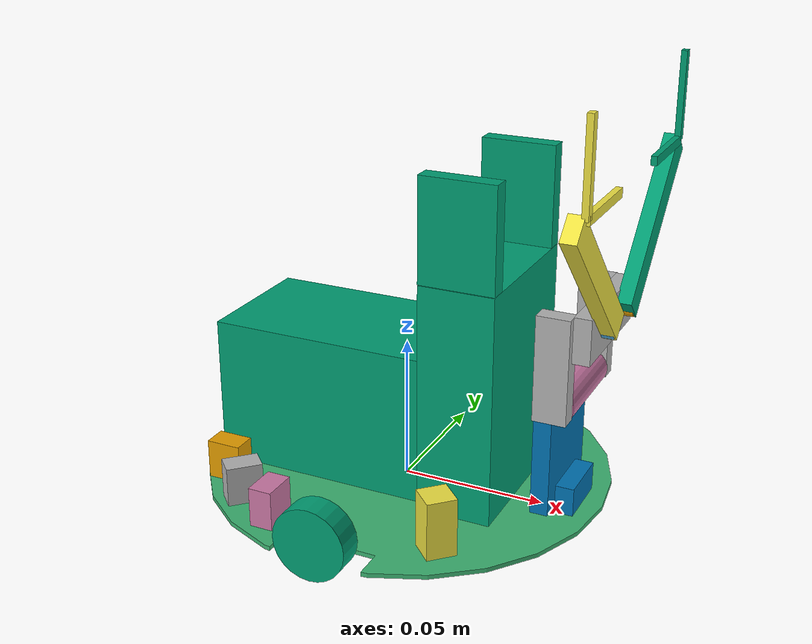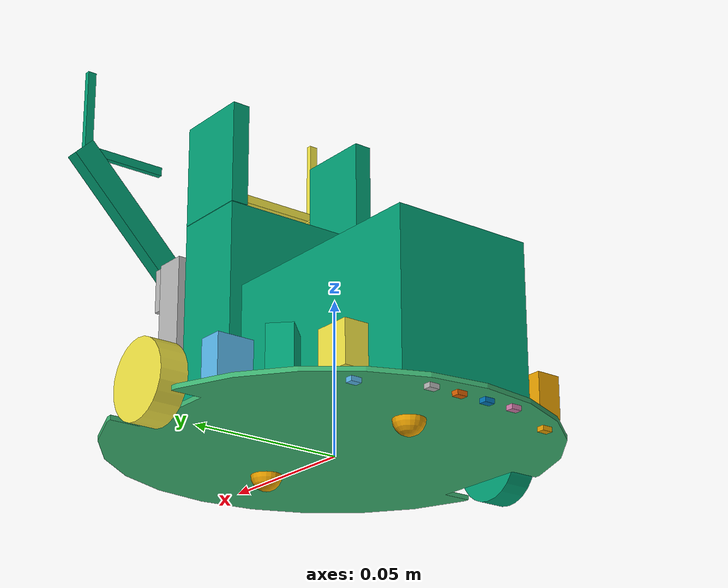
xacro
<?xml version="1.0"?>
<robot xmlns:xacro="http://www.ros.org/wiki/xacro" name="pibot">
  <xacro:include filename="$(find pibot_description)/models/iti0201_robot_cone/urdf/pibot_description.urdf.xacro" />

  <xacro:base_with_casters/>
  <xacro:brainbox_with_battery/>
  <xacro:front_ir_sensors/>
  <xacro:rear_ir_sensors/>
  <xacro:first_two_line_sensors/>
  <xacro:second_two_line_sensors/>
  <xacro:third_two_line_sensors/>
  <!--xacro:raspberry_camera/-->
  <xacro:wheels/>
  <xacro:grabber_arm/>
</robot>

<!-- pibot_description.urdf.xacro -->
<robot xmlns:xacro="http://www.ros.org/wiki/xacro" name="pibot">

  <xacro:macro name="base_with_casters">
    <xacro:property name="base_radius" value="0.07" />
    <xacro:property name="base_height" value="0.0015" />
    <xacro:property name="base_mass" value="5" /> <!--real: 0.48kg-->
    <xacro:property name="caster_wheel_radius" value="0.005" />

    <link name="base_with_casters">

      <inertial>
        <mass value="${base_mass}"/>
        <inertia ixx="${1/12 * base_mass * ((3 * base_radius * base_radius) + (base_height * base_height))}" ixy="0.0" ixz="0.0"
          iyy="${1/12 * base_mass * ((3 * base_radius * base_radius) + (base_height * base_height))}" iyz="0.0"
          izz="${1/2 * base_mass * (base_radius * base_radius)}"/>
      </inertial>

      <visual name="base_visual">
        <origin xyz="0.0745 -0.0725 0.0025" rpy="0 0 1.57"/>
        <geometry>
          <mesh filename="package://iti0201_robot/meshes/base_green.dae"/>
          <!--cylinder length="0.0015" radius="0.07"/-->
        </geometry>
      </visual>

      <collision name="base_collision">
        <origin xyz="0.0745 -0.0725 0.0025" rpy="0 0 1.57"/>
        <geometry>
          <mesh filename="package://iti0201_robot/meshes/base_green.dae"/>
          <!--cylinder length="0.0015" radius="0.07"/-->
        </geometry>
      </collision>

      <visual name='front_caster_visual'>
        <origin xyz="0.035 0 0.0025" rpy="0 0 0"/>
        <geometry>
          <sphere radius="${caster_wheel_radius}"/>
        </geometry>
      </visual>

      <collision name='front_caster_collision'>
        <origin xyz="0.035 0 0.0025" rpy="0 0 0"/>
        <geometry>
          <sphere radius="${caster_wheel_radius}"/>
        </geometry>
      </collision>

      <visual name='rear_caster_visual'>
        <origin xyz="-0.035 0 0.0025" rpy="0 0 0"/>
        <geometry>
          <sphere radius="${caster_wheel_radius}"/>
        </geometry>
      </visual>

      <collision name='rear_caster_collision'>
        <origin xyz="-0.035 0 0.0025" rpy="0 0 0"/>
        <geometry>
          <sphere radius="${caster_wheel_radius}"/>
        </geometry>
      </collision>
    </link>

    <gazebo reference="base_with_casters">
      <surface>
        <friction>
          <ode>
            <mu>0</mu>
            <mu2>0</mu2>
            <slip1>1.0</slip1>
            <slip2>1.0</slip2>
          </ode>
        </friction>
      </surface>
    </gazebo>

    <link name="wheel_joint">
      <inertial>
        <mass value="0.001"/>
        <inertia ixx="${1/12 * 0.001 * ((0.001 * 0.001) + (0.001 * 0.001))}" ixy="0.0" ixz="0.0"
          iyy="${1/12 * 0.001 * ((0.001 * 0.001) + (0.001 * 0.001))}" iyz="0.0"
          izz="${1/12 * 0.001 * ((0.001 * 0.001) + (0.001 * 0.001))}"/>
      </inertial>
      <visual name='joint_visual'>
        <geometry>
          <box size="0.001 0.001 0.001"/>
        </geometry>
      </visual>
    </link>

    <joint type="fixed" name="Wheel_joint_to_base">
      <origin xyz="0 0 0.0095" rpy="0 0 0" />
      <child link="wheel_joint"/>
      <parent link="base_with_casters" />
    </joint>
  </xacro:macro>

<!-- ONLY VISUAL -->
  <xacro:macro name="brainbox_with_battery">
    <link name="brainbox_with_battery">

      <inertial>
        <mass value="0.001"/>
        <inertia ixx="${1/12 * 0.001 * ((0.05 * 0.05) + (0.09 * 0.09))}" ixy="0.0" ixz="0.0"
          iyy="${1/12 * 0.001 * ((0.047 * 0.047) + (0.09 * 0.09))}" iyz="0.0"
          izz="${1/12 * 0.001 * ((0.047 * 0.047) + (0.05 * 0.05))}"/>
      </inertial>

      <visual name="brainbox_visual">
        <origin xyz="-0.022 0 0.0294" rpy="0 0 0" />
        <geometry>
          <box size="0.077 0.0468 0.0512"/>
        </geometry>
      </visual>

      <visual name="camera_stand_visual">
        <origin xyz="0.0294 0 0.043" rpy="0 0 0" />
        <geometry>
          <box size="0.0255 0.0553 0.07896"/>
        </geometry>
      </visual>

      <visual name="camera_stand_right_wall_visual">
        <origin xyz="0.0294 -0.02467 0.1" rpy="0 0 0" />
        <geometry>
          <box size="0.0255 0.006 0.0346"/>
        </geometry>
      </visual>

      <visual name="camera_stand_left_wall_visual">
        <origin xyz="0.0294 0.02467 0.1" rpy="0 0 0" />
        <geometry>
          <box size="0.0255 0.006 0.0346"/>
        </geometry>
      </visual>
    </link>

    <joint type="fixed" name="brainbox_to_base">
      <origin xyz="0 0 0" rpy="0 0 0"/>
      <child link="brainbox_with_battery"/>
      <parent link="base_with_casters"/>
    </joint>
  </xacro:macro>

<!-- SHARP SENSORS -->
  <xacro:macro name="front_ir_sensors">
    <link name="front_right_45deg_ir">
      <inertial>
        <mass value="0.001"/>
        <inertia ixx="${1/12 * 0.001 * ((0.02 * 0.02) + (0.01 * 0.01))}" ixy="0.0" ixz="0.0"
          iyy="${1/12 * 0.001 * ((0.01 * 0.01) + (0.01 * 0.01))}" iyz="0.0"
          izz="${1/12 * 0.001 * ((0.01 * 0.01) + (0.02 * 0.02))}"/>
      </inertial>
      <collision name="front_right_45deg_ir_collision">
        <geometry>
          <box size="0.01 0.01 0.02"/>
        </geometry>
      </collision>
      <visual name="front_right_45deg_ir_visual">
        <geometry>
          <box size="0.01 0.01 0.02"/>
        </geometry>
      </visual>
    </link>

    <joint type="fixed" name="front_right_45deg_ir_to_base">
      <origin xyz="0.0326 -0.0471 0.0138" rpy="0 0 -0.78535"/>
      <child link="front_right_45deg_ir"/>
      <parent link="base_with_casters"/>
    </joint>

    <gazebo reference="front_right_45deg_ir">
      <sensor name="ir" type="ray">
        <ray>
          <scan>
            <horizontal>
              <samples>100</samples>
              <resolution>1</resolution>
              <min_angle>-0.22</min_angle>
              <max_angle>0.22</max_angle>
            </horizontal>
          </scan>
          <range>
            <min>0.15</min>
            <max>1.00</max>
            <resolution>0.01</resolution>
          </range>
        </ray>
        <always_on>1</always_on>
        <update_rate>15</update_rate>
        <visualize>false</visualize>
        <plugin name="ir_plugin" filename="libir_plugin.so">
          <topic>ir/front_right</topic>
        </plugin>
      </sensor>
    </gazebo>

    <link name="front_middle_ir">
      <inertial>
        <mass value="0.001"/>
        <inertia ixx="${1/12 * 0.001 * ((0.01 * 0.01) + (0.01 * 0.01))}" ixy="0.0" ixz="0.0"
          iyy="${1/12 * 0.001 * ((0.02 * 0.02) + (0.01 * 0.01))}" iyz="0.0"
          izz="${1/12 * 0.001 * ((0.02 * 0.02) + (0.01 * 0.01))}"/>
      </inertial>
      <collision name="front_middle_ir_collision">
        <geometry>
          <box size="0.01 0.02 0.01"/>
        </geometry>
      </collision>
      <visual name="front_middle_ir_visual">
        <geometry>
          <box size="0.01 0.02 0.01"/>
        </geometry>
      </visual>
    </link>

    <joint type="fixed" name="front_middle_ir_to_base">
      <origin xyz="0.059312 0 0.0088" rpy="0 0 0"/>
      <child link="front_middle_ir"/>
      <parent link="base_with_casters"/>
    </joint>

    <gazebo reference="front_middle_ir">
      <sensor name="ir" type="ray">
          <ray>
            <scan>
              <horizontal>
                <samples>100</samples>
                <resolution>1</resolution>
                <min_angle>-0.22</min_angle>
                <max_angle>0.22</max_angle>
              </horizontal>
            </scan>
            <range>
              <min>0.15</min>
              <max>1.00</max>
              <resolution>0.01</resolution>
            </range>
          </ray>
          <always_on>1</always_on>
          <update_rate>15</update_rate>
          <visualize>false</visualize>
          <plugin name="ir_plugin" filename="libir_plugin.so">
            <topic>ir/front_middle</topic>
          </plugin>
        </sensor>
    </gazebo>

    <link name="front_left_45deg_ir">
      <inertial>
        <mass value="0.001"/>
        <inertia ixx="${1/12 * 0.001 * ((0.02 * 0.02) + (0.01 * 0.01))}" ixy="0.0" ixz="0.0"
          iyy="${1/12 * 0.001 * ((0.01 * 0.01) + (0.01 * 0.01))}" iyz="0.0"
          izz="${1/12 * 0.001 * ((0.01 * 0.01) + (0.02 * 0.02))}"/>
      </inertial>
      <collision name="front_left_45deg_ir_collisionl">
        <geometry>
          <box size="0.01 0.01 0.02"/>
        </geometry>
      </collision>
      <visual name="front_left_45deg_ir_visual">
        <geometry>
          <box size="0.01 0.01 0.02"/>
        </geometry>
      </visual>
    </link>

    <joint type="fixed" name="front_left_45deg_ir_to_base">
      <origin xyz="0.0326151 0.0470558 0.0138" rpy="0 0 0.78535"/>
      <child link="front_left_45deg_ir"/>
      <parent link="base_with_casters"/>
    </joint>

    <gazebo reference="front_left_45deg_ir">
      <sensor name="ir" type="ray">
          <ray>
            <scan>
              <horizontal>
                <samples>100</samples>
                <resolution>1</resolution>
                <min_angle>-0.22</min_angle>
                <max_angle>0.22</max_angle>
              </horizontal>
            </scan>
            <range>
              <min>0.15</min>
              <max>1.00</max>
              <resolution>0.01</resolution>
            </range>
          </ray>
          <always_on>1</always_on>
          <update_rate>15</update_rate>
          <visualize>false</visualize>
          <plugin name="ir_plugin" filename="libir_plugin.so">
            <topic>ir/front_left</topic>
          </plugin>
        </sensor>
    </gazebo>
  </xacro:macro>

<!-- REAR IR SENSORS -->
  <xacro:macro name="rear_ir_sensors">
    <link name="rear_right_90deg_ir">
      <inertial>
        <mass value="0.001"/>
        <inertia ixx="${1/12 * 0.001 * ((0.0135 * 0.0135) + (0.012 * 0.012))}" ixy="0.0" ixz="0.0"
          iyy="${1/12 * 0.001 * ((0.008 * 0.008) + (0.012 * 0.012))}" iyz="0.0"
          izz="${1/12 * 0.001 * ((0.008 * 0.008) + (0.0135 * 0.0135))}"/>
      </inertial>
      <collision name="collision">
        <geometry>
          <box size="0.012 0.008 0.0135"/>
        </geometry>
      </collision>
      <visual name="visual">
        <geometry>
          <box size="0.012 0.008 0.0135"/>
        </geometry>
      </visual>
    </link>

    <joint type="fixed" name="rear_right_90deg_ir_to_base">
      <origin xyz="-0.02256 -0.0547 0.01134" rpy="0 0 -1.5707" />
      <child link="rear_right_90deg_ir"/>
      <parent link="base_with_casters"/>
    </joint>

    <gazebo reference="rear_right_90deg_ir">
      <sensor name="ir" type="ray">
        <ray>
          <scan>
            <horizontal>
              <samples>100</samples>
              <resolution>1</resolution>
              <min_angle>-0.1</min_angle>
              <max_angle>0.1</max_angle>
            </horizontal>
          </scan>
          <range>
            <min>0.02</min>
            <max>0.16</max>
            <resolution>0.01</resolution>
          </range>
        </ray>
        <always_on>1</always_on>
        <update_rate>15</update_rate>
        <visualize>false</visualize>
        <plugin name="ir_plugin" filename="libir_plugin.so">
          <topic>ir/rear_right_90</topic>
        </plugin>
      </sensor>
    </gazebo>

    <link name="rear_right_45deg_ir">
      <inertial>
        <mass value="0.001"/>
        <inertia ixx="${1/12 * 0.001 * ((0.0135 * 0.0135) + (0.012 * 0.012))}" ixy="0.0" ixz="0.0"
          iyy="${1/12 * 0.001 * ((0.008 * 0.008) + (0.012 * 0.012))}" iyz="0.0"
          izz="${1/12 * 0.001 * ((0.008 * 0.008) + (0.0135 * 0.0135))}"/>
      </inertial>
      <collision name="collision">
        <geometry>
          <box size="0.012 0.008 0.0135"/>
        </geometry>
      </collision>
      <visual name="visual">
        <geometry>
          <box size="0.012 0.008 0.0135"/>
        </geometry>
      </visual>
    </link>

    <joint type="fixed" name="rear_right_45deg_ir_to_base">
      <origin xyz="-0.037845 -0.046812 0.011341" rpy="0 0 -2.35605" />
      <child link="rear_right_45deg_ir"/>
      <parent link="base_with_casters"/>
    </joint>

    <gazebo reference="rear_right_45deg_ir">
      <sensor name="ir" type="ray">
        <ray>
          <scan>
            <horizontal>
              <samples>100</samples>
              <resolution>1</resolution>
              <min_angle>-0.1</min_angle>
              <max_angle>0.1</max_angle>
            </horizontal>
          </scan>
          <range>
            <min>0.02</min>
            <max>0.16</max>
            <resolution>0.01</resolution>
          </range>
        </ray>
        <always_on>1</always_on>
        <update_rate>15</update_rate>
        <visualize>false</visualize>
        <plugin name="ir_plugin" filename="libir_plugin.so">
          <topic>ir/rear_right_45</topic>
        </plugin>
      </sensor>
    </gazebo>

    <link name="rear_right_straight_ir">
      <inertial>
        <mass value="0.001"/>
        <inertia ixx="${1/12 * 0.001 * ((0.0135 * 0.0135) + (0.012 * 0.012))}" ixy="0.0" ixz="0.0"
          iyy="${1/12 * 0.001 * ((0.008 * 0.008) + (0.012 * 0.012))}" iyz="0.0"
          izz="${1/12 * 0.001 * ((0.008 * 0.008) + (0.0135 * 0.0135))}"/>
      </inertial>
      <collision name="collision">
        <geometry>
          <box size="0.012 0.008 0.0135"/>
        </geometry>
      </collision>
      <visual name="visual">
        <geometry>
          <box size="0.012 0.008 0.0135"/>
        </geometry>
      </visual>
    </link>

    <joint type="fixed" name="rear_right_straight_ir_to_base">
      <origin xyz="-0.0501109 -0.035473 0.011341" rpy="0 0 -3.14" />
      <child link="rear_right_straight_ir"/>
      <parent link="base_with_casters"/>
    </joint>

    <gazebo reference="rear_right_straight_ir">
      <sensor name="ir" type="ray">
        <ray>
          <scan>
            <horizontal>
              <samples>100</samples>
              <resolution>1</resolution>
              <min_angle>-0.1</min_angle>
              <max_angle>0.1</max_angle>
            </horizontal>
          </scan>
          <range>
            <min>0.02</min>
            <max>0.16</max>
            <resolution>0.01</resolution>
          </range>
        </ray>
        <always_on>1</always_on>
        <update_rate>15</update_rate>
        <visualize>false</visualize>
        <plugin name="ir_plugin" filename="libir_plugin.so">
          <topic>ir/rear_right_0</topic>
        </plugin>
      </sensor>
    </gazebo>

    <link name="rear_left_90deg_ir">
      <inertial>
        <mass value="0.001"/>
        <inertia ixx="${1/12 * 0.001 * ((0.0135 * 0.0135) + (0.012 * 0.012))}" ixy="0.0" ixz="0.0"
          iyy="${1/12 * 0.001 * ((0.008 * 0.008) + (0.012 * 0.012))}" iyz="0.0"
          izz="${1/12 * 0.001 * ((0.008 * 0.008) + (0.0135 * 0.0135))}"/>
      </inertial>
      <collision name="collision">
        <geometry>
          <box size="0.012 0.008 0.0135"/>
        </geometry>
      </collision>
      <visual name="visual">
        <geometry>
          <box size="0.012 0.008 0.0135"/>
        </geometry>
      </visual>
    </link>

    <joint type="fixed" name="rear_left_90deg_ir_to_base">
      <origin xyz="-0.0225688 0.054749 0.011341" rpy="0 0 1.5707" />
      <child link="rear_left_90deg_ir"/>
      <parent link="base_with_casters"/>
    </joint>

    <gazebo reference="rear_left_90deg_ir">
      <sensor name="ir" type="ray">
        <ray>
          <scan>
            <horizontal>
              <samples>100</samples>
              <resolution>1</resolution>
              <min_angle>-0.1</min_angle>
              <max_angle>0.1</max_angle>
            </horizontal>
          </scan>
          <range>
            <min>0.02</min>
            <max>0.16</max>
            <resolution>0.01</resolution>
          </range>
        </ray>
        <always_on>1</always_on>
        <update_rate>15</update_rate>
        <visualize>false</visualize>
        <plugin name="ir_plugin" filename="libir_plugin.so">
          <topic>ir/rear_left_90</topic>
        </plugin>
      </sensor>
    </gazebo>

    <link name="rear_left_45deg_ir">
      <inertial>
        <mass value="0.001"/>
        <inertia ixx="${1/12 * 0.001 * ((0.0135 * 0.0135) + (0.012 * 0.012))}" ixy="0.0" ixz="0.0"
          iyy="${1/12 * 0.001 * ((0.008 * 0.008) + (0.012 * 0.012))}" iyz="0.0"
          izz="${1/12 * 0.001 * ((0.008 * 0.008) + (0.0135 * 0.0135))}"/>
      </inertial>
      <collision name="collision">
        <geometry>
          <box size="0.012 0.008 0.0135"/>
        </geometry>
      </collision>
      <visual name="visual">
        <geometry>
          <box size="0.012 0.008 0.0135"/>
        </geometry>
      </visual>
    </link>

    <joint type="fixed" name="rear_left_45deg_ir_to_base">
      <origin xyz="-0.037845 0.046812 0.011341" rpy="0 0 2.35605" />
      <child link="rear_left_45deg_ir"/>
      <parent link="base_with_casters"/>
    </joint>

    <gazebo reference="rear_left_45deg_ir">
      <sensor name="ir" type="ray">
        <ray>
          <scan>
            <horizontal>
              <samples>100</samples>
              <resolution>1</resolution>
              <min_angle>-0.1</min_angle>
              <max_angle>0.1</max_angle>
            </horizontal>
          </scan>
          <range>
            <min>0.02</min>
            <max>0.16</max>
            <resolution>0.01</resolution>
          </range>
        </ray>
        <always_on>1</always_on>
        <update_rate>15</update_rate>
        <visualize>false</visualize>
        <plugin name="ir_plugin" filename="libir_plugin.so">
          <topic>ir/rear_left_45</topic>
        </plugin>
      </sensor>
    </gazebo>

    <link name="rear_left_straight_ir">
      <inertial>
        <mass value="0.001"/>
        <inertia ixx="${1/12 * 0.001 * ((0.0135 * 0.0135) + (0.012 * 0.012))}" ixy="0.0" ixz="0.0"
          iyy="${1/12 * 0.001 * ((0.008 * 0.008) + (0.012 * 0.012))}" iyz="0.0"
          izz="${1/12 * 0.001 * ((0.008 * 0.008) + (0.0135 * 0.0135))}"/>
      </inertial>
      <collision name="collision">
        <geometry>
          <box size="0.012 0.008 0.0135"/>
        </geometry>
      </collision>
      <visual name="visual">
        <geometry>
          <box size="0.012 0.008 0.0135"/>
        </geometry>
      </visual>
    </link>

    <joint type="fixed" name="rear_left_straight_ir_to_base">
      <origin xyz="-0.0501109 0.035473 0.011341" rpy="0 0 3.14" />
      <child link="rear_left_straight_ir"/>
      <parent link="base_with_casters"/>
    </joint>

    <gazebo reference="rear_left_straight_ir">
      <sensor name="ir" type="ray">
        <pose>0 0 0 0 -0 1.571</pose>
        <ray>
          <scan>
            <horizontal>
              <samples>100</samples>
              <resolution>1</resolution>
              <min_angle>-0.1</min_angle>
              <max_angle>0.1</max_angle>
            </horizontal>
          </scan>
          <range>
            <min>0.02</min>
            <max>0.16</max>
            <resolution>0.01</resolution>
          </range>
        </ray>
        <always_on>1</always_on>
        <update_rate>15</update_rate>
        <visualize>false</visualize>
        <plugin name="ir_plugin" filename="libir_plugin.so">
          <topic>ir/rear_left_0</topic>
        </plugin>
      </sensor>
    </gazebo>
  </xacro:macro>

<!-- LINE SENSORS -->
  <xacro:macro name="first_two_line_sensors">
    <link name="right_side_first_line_sensor_from_middle">
      <inertial>
        <mass value="0.001"/>
        <inertia ixx="${1/12 * 0.001 * ((0.0025 * 0.0025) + (0.0035 * 0.0035))}" ixy="0.0" ixz="0.0"
          iyy="${1/12 * 0.001 * ((0.0015 * 0.0015) + (0.0035 * 0.0035))}" iyz="0.0"
          izz="${1/12 * 0.001 * ((0.0015 * 0.0015) + (0.0025 * 0.0025))}"/>
      </inertial>
      <collision name="collision">
        <geometry>
          <box size="0.0015 0.0035 0.0025"/>
        </geometry>
      </collision>
      <visual name="visual">
        <geometry>
          <box size="0.0015 0.0035 0.0025"/>
        </geometry>
      </visual>
    </link>

    <joint type="fixed" name="right_side_first_line_sensor_from_middle_to_base">
      <origin xyz="-0.0629 -0.005 0.0014545" rpy="0 1.5707 0" />
      <child link="right_side_first_line_sensor_from_middle"/>
      <parent link="base_with_casters"/>
    </joint>

    <gazebo reference="right_side_first_line_sensor_from_middle">
      <sensor type="camera" name="line_sensor_camera1">
        <update_rate>15.0</update_rate>
        <camera name="head">
          <horizontal_fov>0.4</horizontal_fov>
          <image>
            <width>48</width>
            <height>48</height>
            <format>L8</format>
          </image>
          <clip>
              <near>0.001</near>
              <far>0.031</far>
          </clip>
        </camera>
        <always_on>1</always_on>
        <update_rate>15</update_rate>
        <visualize>false</visualize>
        <plugin name="camera_controller" filename="libgazebo_ros_camera.so">
          <alwaysOn>true</alwaysOn>
          <updateRate>15.0</updateRate>
          <cameraName>/robot/line_sensor/right_first</cameraName>
          <imageTopicName>image_raw</imageTopicName>
          <cameraInfoTopicName>camera_info</cameraInfoTopicName>
          <frameName>camera_link</frameName>
          <hackBaseline>0.07</hackBaseline>
          <distortionK1>0.0</distortionK1>
          <distortionK2>0.0</distortionK2>
          <distortionK3>0.0</distortionK3>
          <distortionT1>0.0</distortionT1>
          <distortionT2>0.0</distortionT2>
        </plugin>
      </sensor>
    </gazebo>

    <link name="left_side_first_line_sensor_from_middle">
      <inertial>
        <mass value="0.001"/>
        <inertia ixx="${1/12 * 0.001 * ((0.0025 * 0.0025) + (0.0035 * 0.0035))}" ixy="0.0" ixz="0.0"
          iyy="${1/12 * 0.001 * ((0.0015 * 0.0015) + (0.0035 * 0.0035))}" iyz="0.0"
          izz="${1/12 * 0.001 * ((0.0015 * 0.0015) + (0.0025 * 0.0025))}"/>
      </inertial>
      <collision name="collision">
        <geometry>
          <box size="0.0015 0.0035 0.0025"/>
        </geometry>
      </collision>
      <visual name="visual">
        <geometry>
          <box size="0.0015 0.0035 0.0025"/>
        </geometry>
      </visual>
    </link>

    <joint type="fixed" name="left_side_first_line_sensor_from_middle_to_base">
      <origin xyz="-0.0629 0.005 0.0014545" rpy="0 1.5707 0" />
      <child link="left_side_first_line_sensor_from_middle"/>
      <parent link="base_with_casters"/>
    </joint>

    <gazebo reference="left_side_first_line_sensor_from_middle">
      <sensor type="camera" name="line_sensor_camera2">
        <update_rate>15.0</update_rate>
        <pose>0 0 0 0 1.571 0</pose>
        <camera name="head">
          <horizontal_fov>0.4</horizontal_fov>
          <image>
            <width>48</width>
            <height>48</height>
            <format>L8</format>
          </image>
          <clip>
              <near>0.001</near>
              <far>0.031</far>
          </clip>
        </camera>
        <always_on>1</always_on>
        <update_rate>15</update_rate>
        <visualize>false</visualize>
        <plugin name="camera_controller" filename="libgazebo_ros_camera.so">
          <alwaysOn>true</alwaysOn>
          <updateRate>15.0</updateRate>
          <cameraName>/robot/line_sensor/left_first</cameraName>
          <imageTopicName>image_raw</imageTopicName>
          <cameraInfoTopicName>camera_info</cameraInfoTopicName>
          <frameName>camera_link</frameName>
          <hackBaseline>0.07</hackBaseline>
          <distortionK1>0.0</distortionK1>
          <distortionK2>0.0</distortionK2>
          <distortionK3>0.0</distortionK3>
          <distortionT1>0.0</distortionT1>
          <distortionT2>0.0</distortionT2>
        </plugin>
      </sensor>
    </gazebo>
  </xacro:macro>

  <xacro:macro name="second_two_line_sensors">
    <link name="right_side_second_line_sensor_from_middle">
      <inertial>
        <mass value="0.001"/>
        <inertia ixx="${1/12 * 0.001 * ((0.0025 * 0.0025) + (0.0035 * 0.0035))}" ixy="0.0" ixz="0.0"
          iyy="${1/12 * 0.001 * ((0.0015 * 0.0015) + (0.0035 * 0.0035))}" iyz="0.0"
          izz="${1/12 * 0.001 * ((0.0015 * 0.0015) + (0.0025 * 0.0025))}"/>
      </inertial>
      <collision name="collision">
        <geometry>
          <box size="0.0015 0.0035 0.0025"/>
        </geometry>
      </collision>
      <visual name="visual">
        <geometry>
          <box size="0.0015 0.0035 0.0025"/>
        </geometry>
      </visual>
    </link>

    <joint type="fixed" name="right_side_second_line_sensor_from_middle_to_base">
      <origin xyz="-0.06289935 -0.015 0.0014545" rpy="0 1.5707 0" />
      <child link="right_side_second_line_sensor_from_middle"/>
      <parent link="base_with_casters"/>
    </joint>

    <gazebo reference="right_side_second_line_sensor_from_middle">
      <sensor type="camera" name="line_sensor_camera3">
        <update_rate>15.0</update_rate>
        <pose>0 0 0 0 1.571 0</pose>
        <camera name="head">
          <horizontal_fov>0.4</horizontal_fov>
          <image>
            <width>48</width>
            <height>48</height>
            <format>L8</format>
          </image>
          <clip>
              <near>0.001</near>
              <far>0.031</far>
          </clip>
        </camera>
        <always_on>1</always_on>
        <update_rate>15</update_rate>
        <visualize>false</visualize>
        <plugin name="camera_controller" filename="libgazebo_ros_camera.so">
          <alwaysOn>true</alwaysOn>
          <updateRate>15.0</updateRate>
          <cameraName>/robot/line_sensor/right_second</cameraName>
          <imageTopicName>image_raw</imageTopicName>
          <cameraInfoTopicName>camera_info</cameraInfoTopicName>
          <frameName>camera_link</frameName>
          <hackBaseline>0.07</hackBaseline>
          <distortionK1>0.0</distortionK1>
          <distortionK2>0.0</distortionK2>
          <distortionK3>0.0</distortionK3>
          <distortionT1>0.0</distortionT1>
          <distortionT2>0.0</distortionT2>
        </plugin>
      </sensor>
    </gazebo>

    <link name="left_side_second_line_sensor_from_middle">
      <inertial>
        <mass value="0.001"/>
        <inertia ixx="${1/12 * 0.001 * ((0.0025 * 0.0025) + (0.0035 * 0.0035))}" ixy="0.0" ixz="0.0"
          iyy="${1/12 * 0.001 * ((0.0015 * 0.0015) + (0.0035 * 0.0035))}" iyz="0.0"
          izz="${1/12 * 0.001 * ((0.0015 * 0.0015) + (0.0025 * 0.0025))}"/>
      </inertial>
      <collision name="collision">
        <geometry>
          <box size="0.0015 0.0035 0.0025"/>
        </geometry>
      </collision>
      <visual name="visual">
        <geometry>
          <box size="0.0015 0.0035 0.0025"/>
        </geometry>
      </visual>
    </link>

    <joint type="fixed" name="left_side_second_line_sensor_from_middle_to_base">
      <origin xyz="-0.06289935 0.015 0.0014545" rpy="0 1.5707 0" />
      <child link="left_side_second_line_sensor_from_middle"/>
      <parent link="base_with_casters"/>
    </joint>

    <gazebo reference="left_side_second_line_sensor_from_middle">
      <sensor type="camera" name="line_sensor_camera4">
        <update_rate>15.0</update_rate>
        <pose>0 0 0 0 1.571 0</pose>
        <camera name="head">
          <horizontal_fov>0.4</horizontal_fov>
          <image>
            <width>48</width>
            <height>48</height>
            <format>L8</format>
          </image>
          <clip>
              <near>0.001</near>
              <far>0.031</far>
          </clip>
        </camera>
        <always_on>1</always_on>
        <update_rate>15</update_rate>
        <visualize>false</visualize>
        <plugin name="camera_controller" filename="libgazebo_ros_camera.so">
          <alwaysOn>true</alwaysOn>
          <updateRate>15.0</updateRate>
          <cameraName>/robot/line_sensor/left_second</cameraName>
          <imageTopicName>image_raw</imageTopicName>
          <cameraInfoTopicName>camera_info</cameraInfoTopicName>
          <frameName>camera_link</frameName>
          <hackBaseline>0.07</hackBaseline>
          <distortionK1>0.0</distortionK1>
          <distortionK2>0.0</distortionK2>
          <distortionK3>0.0</distortionK3>
          <distortionT1>0.0</distortionT1>
          <distortionT2>0.0</distortionT2>
        </plugin>
      </sensor>
    </gazebo>
  </xacro:macro>

  <xacro:macro name="third_two_line_sensors">
    <link name="right_side_third_line_sensor_from_middle">
      <inertial>
        <mass value="0.001"/>
        <inertia ixx="${1/12 * 0.001 * ((0.0025 * 0.0025) + (0.0035 * 0.0035))}" ixy="0.0" ixz="0.0"
          iyy="${1/12 * 0.001 * ((0.0015 * 0.0015) + (0.0035 * 0.0035))}" iyz="0.0"
          izz="${1/12 * 0.001 * ((0.0015 * 0.0015) + (0.0025 * 0.0025))}"/>
      </inertial>
      <collision name="collision">
        <geometry>
          <box size="0.0015 0.0035 0.0025"/>
        </geometry>
      </collision>
      <visual name="visual">
        <geometry>
          <box size="0.0015 0.0035 0.0025"/>
        </geometry>
      </visual>
    </link>

    <joint type="fixed" name="right_side_third_line_sensor_from_middle_to_base">
      <origin xyz="-0.0541 -0.035 0.0014545" rpy="0 1.5707 0" />
      <child link="right_side_third_line_sensor_from_middle"/>
      <parent link="base_with_casters"/>
    </joint>

    <gazebo reference="right_side_third_line_sensor_from_middle">
      <sensor type="camera" name="line_sensor_camera5">
        <update_rate>15.0</update_rate>
        <pose>0 0 0 0 1.571 0</pose>
        <camera name="head">
          <horizontal_fov>0.4</horizontal_fov>
          <image>
            <width>48</width>
            <height>48</height>
            <format>L8</format>
          </image>
          <clip>
              <near>0.001</near>
              <far>0.031</far>
          </clip>
        </camera>
        <always_on>1</always_on>
        <update_rate>15</update_rate>
        <visualize>false</visualize>
        <plugin name="camera_controller" filename="libgazebo_ros_camera.so">
          <alwaysOn>true</alwaysOn>
          <updateRate>15.0</updateRate>
          <cameraName>/robot/line_sensor/right_third</cameraName>
          <imageTopicName>image_raw</imageTopicName>
          <cameraInfoTopicName>camera_info</cameraInfoTopicName>
          <frameName>camera_link</frameName>
          <hackBaseline>0.07</hackBaseline>
          <distortionK1>0.0</distortionK1>
          <distortionK2>0.0</distortionK2>
          <distortionK3>0.0</distortionK3>
          <distortionT1>0.0</distortionT1>
          <distortionT2>0.0</distortionT2>
        </plugin>
      </sensor>
    </gazebo>

    <link name="left_side_third_line_sensor_from_middle">
      <inertial>
        <mass value="0.001"/>
        <inertia ixx="${1/12 * 0.001 * ((0.0025 * 0.0025) + (0.0035 * 0.0035))}" ixy="0.0" ixz="0.0"
          iyy="${1/12 * 0.001 * ((0.0015 * 0.0015) + (0.0035 * 0.0035))}" iyz="0.0"
          izz="${1/12 * 0.001 * ((0.0015 * 0.0015) + (0.0025 * 0.0025))}"/>
      </inertial>
      <collision name="collision">
        <geometry>
          <box size="0.0015 0.0035 0.0025"/>
        </geometry>
      </collision>
      <visual name="visual">
        <geometry>
          <box size="0.0015 0.0035 0.0025"/>
        </geometry>
      </visual>
    </link>

    <joint type="fixed" name="left_side_third_line_sensor_from_middle_to_base">
      <origin xyz="-0.0541 0.035 0.0014545" rpy="0 1.5707 0" />
      <child link="left_side_third_line_sensor_from_middle"/>
      <parent link="base_with_casters"/>
    </joint>

    <gazebo reference="left_side_third_line_sensor_from_middle">
      <sensor type="camera" name="line_sensor_camera6">
        <update_rate>15.0</update_rate>
        <pose>0 0 0 0 1.571 0</pose>
        <camera name="head">
          <horizontal_fov>0.4</horizontal_fov>
          <image>
            <width>48</width>
            <height>48</height>
            <format>L8</format>
          </image>
          <clip>
              <near>0.001</near>
              <far>0.031</far>
          </clip>
        </camera>
        <always_on>1</always_on>
        <update_rate>15</update_rate>
        <visualize>false</visualize>
        <plugin name="camera_controller" filename="libgazebo_ros_camera.so">
          <alwaysOn>true</alwaysOn>
          <updateRate>15.0</updateRate>
          <cameraName>/robot/line_sensor/left_third</cameraName>
          <imageTopicName>image_raw</imageTopicName>
          <cameraInfoTopicName>camera_info</cameraInfoTopicName>
          <frameName>camera_link</frameName>
          <hackBaseline>0.07</hackBaseline>
          <distortionK1>0.0</distortionK1>
          <distortionK2>0.0</distortionK2>
          <distortionK3>0.0</distortionK3>
          <distortionT1>0.0</distortionT1>
          <distortionT2>0.0</distortionT2>
        </plugin>
      </sensor>
    </gazebo>
  </xacro:macro>

<!-- CAMERA -->
  <xacro:macro name="raspberry_camera">
    <link name="camera_stand_pole">
      <inertial>
        <mass value="0.001"/>
        <inertia ixx="${1/12 * 0.001 * ((3 * 0.003822 * 0.003822) + (0.0433499 * 0.0433499))}" ixy="0.0" ixz="0.0"
          iyy="${1/12 * 0.001 * ((3 * 0.003822 * 0.003822) + (0.0433499 * 0.0433499))}" iyz="0.0"
          izz="${1/2 * 0.001 * (0.003822 * 0.003822)}"/>
      </inertial>
      <collision name="collision">
        <geometry>
          <cylinder radius="0.003822" length="0.0433499"/>
        </geometry>
      </collision>
      <visual name="visual">
        <geometry>
          <cylinder radius="0.003822" length="0.0433499"/>
        </geometry>
      </visual>
    </link>

    <joint type="fixed" name="camera_stand_pole_to_base">
      <origin xyz="0.02940475 0 0.1135341" rpy="0 1.5707 1.5707" />
      <child link="camera_stand_pole"/>
      <parent link="base_with_casters"/>
    </joint>

    <link name="pi_camera">
      <inertial>
        <mass value="0.001"/>
        <inertia ixx="${1/12 * 0.001 * ((0.024 * 0.024) + (0.017 * 0.017))}" ixy="0.0" ixz="0.0"
          iyy="${1/12 * 0.001 * ((0.024 * 0.024) + (0.017 * 0.017))}" iyz="0.0"
          izz="${1/12 * 0.001 * ((0.024 * 0.024) + (0.024 * 0.024))}"/>
      </inertial>
      <collision name="collision">
        <geometry>
          <box size="0.017 0.024 0.024"/>
        </geometry>
      </collision>
      <visual name="visual">
        <geometry>
          <box size="0.017 0.024 0.024"/>
        </geometry>
      </visual>
    </link>

    <joint type="fixed" name="pi_camera_to_pole">
      <origin xyz="0 -0.0104 0" rpy="0 0 -1.5707"/>
      <child link="pi_camera"/>
      <parent link="camera_stand_pole"/>
    </joint>

    <gazebo reference="pi_camera">
      <sensor type="camera" name="camera">
        <update_rate>30.0</update_rate>
        <always_on>1</always_on>
        <visualize>false</visualize>
        <camera name="head">
          <horizontal_fov>1.3962634</horizontal_fov>
          <image>
            <width>800</width>
            <height>800</height>
            <format>R8G8B8</format>
          </image>
          <clip>
            <near>0.02</near>
            <far>300</far>
          </clip>
        </camera>

        <plugin name="camera_controller" filename="libgazebo_ros_camera.so">
          <alwaysOn>true</alwaysOn>
          <updateRate>0.0</updateRate>
          <cameraName>robot/camera</cameraName>
          <imageTopicName>image_raw</imageTopicName>
          <cameraInfoTopicName>camera_info</cameraInfoTopicName>
          <frameName>camera_link</frameName>
          <hackBaseline>0.07</hackBaseline>
          <distortionK1>0.0</distortionK1>
          <distortionK2>0.0</distortionK2>
          <distortionK3>0.0</distortionK3>
          <distortionT1>0.0</distortionT1>
          <distortionT2>0.0</distortionT2>
        </plugin>
      </sensor>
    </gazebo>
  </xacro:macro>

<!-- WHEELS -->
  <xacro:macro name="wheels">
    <xacro:property name="wheel_mass" value="1" /> <!-- real: 0.005-->
    <xacro:property name="wheel_radius" value="0.0125"/>
    <xacro:property name="wheel_length" value="0.009"/>

    <link name="right_wheel">
      <inertial>
        <mass value="${wheel_mass}"/>
        <inertia ixx="${1/12 * wheel_mass * ((3 * wheel_radius * wheel_radius) + (wheel_length * wheel_length))}" ixy="0.0" ixz="0.0"
          iyy="${1/12 * wheel_mass * ((3 * wheel_radius * wheel_radius) + (wheel_length * wheel_length))}" iyz="0.0"
          izz="${1/2 * wheel_mass * (wheel_radius * wheel_radius)}"/>
      </inertial>

      <visual name="right_wheel_visual">
      <origin xyz="0 0 0" rpy="0 0 0" />
        <geometry>
          <cylinder radius="${wheel_radius}" length="${wheel_length}"/>
        </geometry>
      </visual>

      <collision name="right_wheel_collision">
      <origin xyz="0 0 0" rpy="0 0 0" />
        <geometry>
          <cylinder radius="${wheel_radius}" length="${wheel_length}"/>
        </geometry>
      </collision>
    </link>

    <gazebo reference="right_wheel">
      <mu1 value="1.0"/>
      <mu2 value="1.0"/>
      <kp value="10000000.0" />
      <kd value="1.0" />
      <fdir1 value="1 0 0"/>
    </gazebo>

    <joint type="continuous" name="right_wheel_hinge">
      <origin xyz="0 -0.0655 0" rpy="0 1.5707 1.5707"/>
      <child link="right_wheel"/>
      <parent link="wheel_joint"/>
      <!--proovisin erinevaid väärtusi siia "limit" alla, midagi ei muutunud -->
      <limit effort="10.0" velocity="1.0" />
      <axis xyz="0 0 1" rpy="0 0 0"/>
    </joint>

    <link name="left_wheel">
      <inertial>
        <mass value="${wheel_mass}"/>
        <inertia ixx="${1/12 * wheel_mass * ((3 * wheel_radius * wheel_radius) + (wheel_length * wheel_length))}" ixy="0.0" ixz="0.0"
          iyy="${1/12 * wheel_mass * ((3 * wheel_radius * wheel_radius) + (wheel_length * wheel_length))}" iyz="0.0"
          izz="${1/2 * wheel_mass * (wheel_radius * wheel_radius)}"/>
      </inertial>

      <visual name="left_wheel_visual">
      <origin xyz="0 0 0" rpy="0 0 0" />
        <geometry>
          <cylinder radius="${wheel_radius}" length="${wheel_length}"/>
        </geometry>
      </visual>

      <collision name="left_wheel_collision">
      <origin xyz="0 0 0" rpy="0 0 0" />
        <geometry>
          <cylinder radius="${wheel_radius}" length="${wheel_length}"/>
        </geometry>
      </collision>
    </link>

    <gazebo reference="left_wheel">
      <mu1 value="1.0"/>
      <mu2 value="1.0"/>
      <kp value="10000000.0" />
      <kd value="1.0" />
      <fdir1 value="1 0 0"/>
    </gazebo>

    <joint type="continuous" name="left_wheel_hinge">
      <origin xyz="0 0.0655 0" rpy="0 1.5707 1.5707"/>
      <child link="left_wheel"/>
      <parent link="wheel_joint"/>
      <limit effort="10.0" velocity="1.0" />
      <axis xyz="0 0 1" rpy="0 0 0"/>
    </joint>

    <gazebo>
      <plugin name="wheel_plugin" filename="libwheel_plugin.so"/>
    </gazebo>
  </xacro:macro>

<!-- ARM -->
  <xacro:macro name="grabber_arm">
    <link name="grabber_to_base_1">
      <inertial>
        <mass value="0.001"/>
        <inertia ixx="0.0000337" ixy="0.0" ixz="0.0"
          iyy="0.0000493" iyz="0.0"
          izz="0.0000248"/>
      </inertial>

      <collision name="arm_to_base_col">
        <geometry>
          <box size=".006 .034 .03455"/>
        </geometry>
      </collision>
      <visual name="arm_to_base_vis">
        <geometry>
          <box size=".006 .034 .03455"/>
        </geometry>
      </visual>
    </link>

    <joint type="fixed" name="grabber_to_base_joint_1">
      <origin xyz="0.055 0 0.0235" rpy="0 0 0" />
      <child link="grabber_to_base_1"/>
      <parent link="base_with_casters"/>
    </joint>

    <link name="pole_rotation_reference">
      <inertial>
        <mass value="0.001"/>
        <inertia ixx="0.0000337" ixy="0.0" ixz="0.0"
          iyy="0.0000493" iyz="0.0"
          izz="0.0000248"/>
      </inertial>

      <collision name="pole_rotation_reference_col">
        <geometry>
          <box size=".001 .001 .001"/>
        </geometry>
      </collision>
      <visual name="pole_rotation_reference_vis">
        <geometry>
          <box size=".001 .001 .001"/>
        </geometry>
      </visual>
    </link>

    <joint type="fixed" name="pole_rotation_reference_to_base">
      <origin xyz="0.059 0 0.04555" rpy="0 1.5707 1.5707" />
      <child link="pole_rotation_reference"/>
      <parent link="base_with_casters"/>
    </joint>

    <link name="grabber_pole">
      <inertial>
        <mass value="0.001"/>
        <inertia ixx="0.0000337" ixy="0.0" ixz="0.0"
          iyy="0.0000493" iyz="0.0"
          izz="0.0000248"/>
      </inertial>

      <collision name="the_pole_col">
        <geometry>
          <cylinder radius=".006" length=".034"/>
        </geometry>
      </collision>
      <visual name="the_pole_vis">
        <geometry>
          <cylinder radius=".006" length=".034"/>
        </geometry>
      </visual>
    </link>

    <!-- TODO -->
    <joint type="revolute" name="grabber_pole">
      <origin xyz="0 0 0" rpy="0 0 0" />
      <child link="grabber_pole"/>
      <parent link="pole_rotation_reference"/>
      <limit effort="10.0" velocity="1.0" lower="0.0" upper="1.5"/>
      <axis xyz="0 0 1"/>
    </joint>

    <link name="grabber_mount">
      <collision name="arm_collision_left">
        <origin xyz="0.0144 0.02 0" rpy="0 0 0" />
        <geometry>
          <box size=".035 .006 .011"/>
        </geometry>
      </collision>
      <visual name="arm_visual_left">
        <origin xyz="0.0144 0.02 0" rpy="0 0 0" />
        <geometry>
          <box size=".035 .006 .011"/>
        </geometry>
      </visual>

      <collision name="arm_collision_right">
        <origin xyz="0.0144 -0.02 0" rpy="0 0 0" />
        <geometry>
          <box size=".035 .006 .011"/>
        </geometry>
      </collision>
      <visual name="arm_visual_right">
        <origin xyz="0.0144 -0.02 0" rpy="0 0 0" />
        <geometry>
          <box size=".035 .006 .011"/>
        </geometry>
      </visual>

      <collision name="collision_under">
        <origin xyz="0.025 0 -0.00855" rpy="0 0 0"/>
        <geometry>
          <box size=".015 .042 .0057"/>
        </geometry>
      </collision>
      <visual name="visual_under">
        <origin xyz="0.025 0 -0.00855" rpy="0 0 0"/>
        <geometry>
          <box size=".015 .042 .0057"/>
        </geometry>
      </visual>

      <inertial>
        <mass value="0.001"/>
        <inertia ixx="0.0000337" ixy="0.0" ixz="0.0"
          iyy="0.0000493" iyz="0.0"
          izz="0.0000248"/>
      </inertial>
    </link>

    <joint type="fixed" name="grabber_mount_to_pole">
      <origin xyz="0 0 0" rpy="1.5707 0 3.1414"/>
      <child link="grabber_mount"/>
      <parent link="grabber_pole"/>
    </joint>

    <link name="grabber_left_arm_joint">
      <collision name="collision_for_left_arm_joint">
        <geometry>
          <cylinder radius=".002" length=".004"/>
        </geometry>
      </collision>
      <visual name="visual_for_left_arm_joint">
        <geometry>
          <cylinder radius=".002" length=".004"/>
        </geometry>
      </visual>

      <inertial>
        <mass value="0.001"/>
        <inertia ixx="0.0000337" ixy="0.0" ixz="0.0"
          iyy="0.0000493" iyz="0.0"
          izz="0.0000248"/>
      </inertial>
    </link>

    <!-- TODO -->
    <joint type="revolute" name="grabber_left_arm_joint_to_grabber_mount">
      <origin xyz="0.025 0.01 -0.01355" rpy="0 3.1414 0" />
      <child link="grabber_left_arm_joint"/>
      <parent link="grabber_mount"/>
      <limit effort="10.0" velocity="1.0" lower="0.0" upper="0.7"/>
      <axis xyz="0 0 1"/>
    </joint>

    <link name="grabber_right_arm_joint">
      <collision name="collision_for_right_arm_joint">
        <geometry>
          <cylinder radius=".002" length=".004"/>
        </geometry>
      </collision>
      <visual name="visual_for_right_arm_joint">
        <geometry>
          <cylinder radius=".002" length=".004"/>
        </geometry>
      </visual>

      <inertial>
        <mass value="0.001"/>
        <inertia ixx="0.0000337" ixy="0.0" ixz="0.0"
          iyy="0.0000493" iyz="0.0"
          izz="0.0000248"/>
      </inertial>
    </link>

    <!-- TODO -->
    <joint type="revolute" name="grabber_right_arm_joint_to_grabber_mount">
      <origin xyz="0.025 -0.01 -0.01355" rpy="0 3.1414 0" />
      <child link="grabber_right_arm_joint"/>
      <parent link="grabber_mount"/>
      <limit effort="10.0" velocity="1.0" lower="0.0" upper="-0.7"/>
      <axis xyz="0 0 1"/>
    </joint>

    <link name="grabber_arm_left">
      <collision name="main_arm_collision_l">
        <origin xyz="0.023 0.019 0" rpy="0 0 0.78535"/>
        <geometry>
          <box size=".06213 .009 .005"/>
        </geometry>
      </collision>
      <visual name="main_arm_visual_l">
        <origin xyz="0.023 0.019 0" rpy="0 0 0.78535"/>
        <geometry>
          <box size=".06213 .009 .005"/>
        </geometry>
      </visual>

      <collision name="small_arm_collision_l_f">
        <origin xyz="0.061 0.037 -0.0025" rpy="0 0 0"/>
        <geometry>
          <box size=".029 .003 .002"/>
        </geometry>
      </collision>
      <visual name="small_arm_visual_l_f">
        <origin xyz="0.061 0.037 -0.0025" rpy="0 0 0"/>
        <geometry>
          <box size=".029 .003 .002"/>
        </geometry>
      </visual>

      <collision name="small_arm_collision_l_b">
        <origin xyz="0.0465 0.0225 -0.0025" rpy="0 0 -1.5707"/>
        <geometry>
          <box size=".029 .003 .002"/>
        </geometry>
      </collision>
      <visual name="small_arm_visual_l_b">
        <origin xyz="0.0465 0.0225 -0.0025" rpy="0 0 -1.5707"/>
        <geometry>
          <box size=".029 .003 .002"/>
        </geometry>
      </visual>

      <inertial>
        <mass value="0.001"/>
        <inertia ixx="0.0000337" ixy="0.0" ixz="0.0"
          iyy="0.0000493" iyz="0.0"
          izz="0.0000248"/>
      </inertial>
    </link>

    <joint type="fixed" name="grabber_arm_left_to_grabber_joint">
      <origin xyz="0 0 0" rpy="0 3.1414 0" />
      <child link="grabber_arm_left"/>
      <parent link="grabber_left_arm_joint"/>
    </joint>

    <link name="grabber_arm_right">
      <collision name="main_arm_collision_r">
        <origin xyz="0.023 -0.019 0" rpy="0 0 -0.78535"/>
        <geometry>
          <box size=".06213 .009 .005"/>
        </geometry>
      </collision>
      <visual name="main_arm_visual_r">
        <origin xyz="0.023 -0.019 0" rpy="0 0 -0.78535"/>
        <geometry>
          <box size=".06213 .009 .005"/>
        </geometry>
      </visual>

      <collision name="small_arm_collision_r_f">
        <origin xyz="0.061 -0.037 -0.0025" rpy="0 0 0"/>
        <geometry>
          <box size=".029 .003 .002"/>
        </geometry>
      </collision>
      <visual name="small_arm_visual_r_f">
        <origin xyz="0.061 -0.037 -0.0025" rpy="0 0 0"/>
        <geometry>
          <box size=".029 .003 .002"/>
        </geometry>
      </visual>

      <collision name="small_arm_collision_r_b">
        <origin xyz="0.0465 -0.0225 -0.0025" rpy="0 0 -1.5707"/>
        <geometry>
          <box size=".029 .003 .002"/>
        </geometry>
      </collision>
      <visual name="small_arm_visual_r_b">
        <origin xyz="0.0465 -0.0225 -0.0025" rpy="0 0 -1.5707"/>
        <geometry>
          <box size=".029 .003 .002"/>
        </geometry>
      </visual>

      <inertial>
        <mass value="0.001"/>
        <inertia ixx="0.0000337" ixy="0.0" ixz="0.0"
          iyy="0.0000493" iyz="0.0"
          izz="0.0000248"/>
      </inertial>
    </link>

    <joint type="fixed" name="grabber_arm_right_to_grabber_joint">
      <origin xyz="0 0 0" rpy="0 3.1414 0" />
      <child link="grabber_arm_right"/>
      <parent link="grabber_right_arm_joint"/>
    </joint>

    <gazebo>
      <plugin name="grabber_plugin" filename="libgrabber_plugin.so"/>
    </gazebo>
  </xacro:macro>

</robot>
